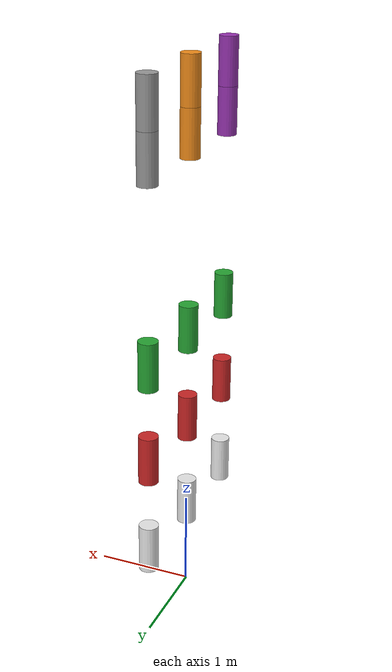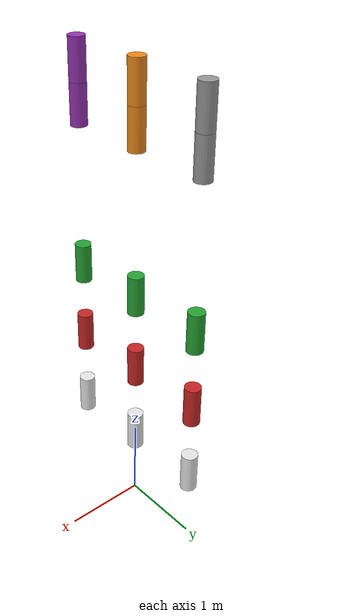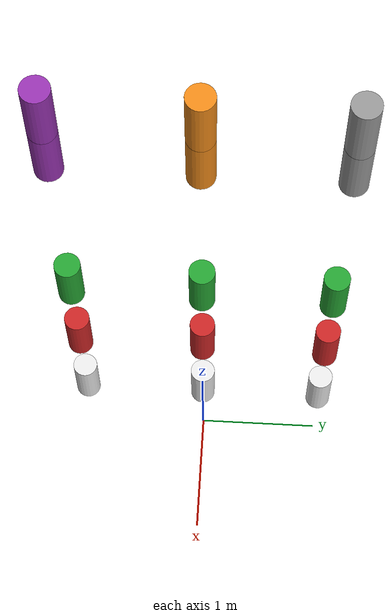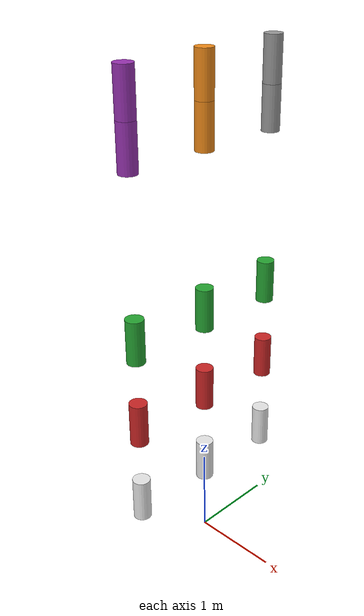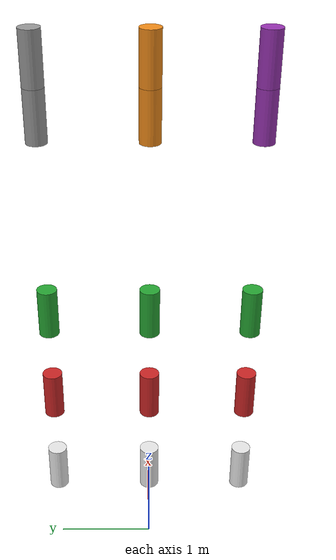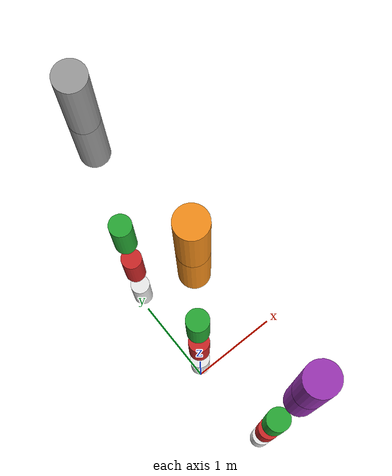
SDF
<?xml version="1.0"?>
<sdf version="1.6">
  <world name='default'>
    <light name='sun' type='directional'>
      <cast_shadows>1</cast_shadows>
      <pose frame=''>0 0 10 0 -0 0</pose>
      <diffuse>0.8 0.8 0.8 1</diffuse>
      <specular>0.1 0.1 0.1 1</specular>
      <attenuation>
        <range>1000</range>
        <constant>0.9</constant>
        <linear>0.01</linear>
        <quadratic>0.001</quadratic>
      </attenuation>
      <direction>-0.5 0.5 -1</direction>
    </light>
    <gravity>0 0 0</gravity>
    <magnetic_field>6e-06 2.3e-05 -4.2e-05</magnetic_field>
    <atmosphere type='adiabatic'/>
    <physics name='default_physics' default='0' type='ode'>
      <max_step_size>0.001</max_step_size>
      <real_time_factor>1</real_time_factor>
      <real_time_update_rate>1000</real_time_update_rate>
    </physics>
    <scene>
      <ambient>0.4 0.4 0.4 1</ambient>
      <background>0.7 0.7 0.7 1</background>
      <shadows>1</shadows>
    </scene>
    <model name='link_velocity_demo'>
      <plugin name='set_link_velocity_plugin' filename='libSetLinkVelocityPlugin.so'/>
      <link name='white_link_0'>
        <pose frame=''>0 1 1 0 0 0</pose>
        <visual name='white_visual_0'>
          <geometry>
            <cylinder>
              <radius>0.1</radius>
              <length>0.5</length>
            </cylinder>
          </geometry>
          <material>
            <lighting>1</lighting>
            <script>
              <uri>file://media/materials/scripts/gazebo.material</uri>
              <name>Gazebo/White</name>
            </script>
          </material>
        </visual>
      </link>
      <link name='white_link_1'>
        <pose frame=''>0 0 1 0 0 0</pose>
        <visual name='white_visual_1'>
          <geometry>
            <cylinder>
              <radius>0.1</radius>
              <length>0.5</length>
            </cylinder>
          </geometry>
          <material>
            <lighting>1</lighting>
            <script>
              <uri>file://media/materials/scripts/gazebo.material</uri>
              <name>Gazebo/White</name>
            </script>
          </material>
        </visual>
      </link>
      <link name='white_link_2'>
        <pose frame=''>0 -1 1 0 0 0</pose>
        <visual name='white_visual_2'>
          <geometry>
            <cylinder>
              <radius>0.1</radius>
              <length>0.5</length>
            </cylinder>
          </geometry>
          <material>
            <lighting>1</lighting>
            <script>
              <uri>file://media/materials/scripts/gazebo.material</uri>
              <name>Gazebo/White</name>
            </script>
          </material>
        </visual>
      </link>
      <link name='red_link_0'>
        <pose frame=''>0 1 2 0 0 0</pose>
        <visual name='red_visual_1'>
          <geometry>
            <cylinder>
              <radius>0.1</radius>
              <length>0.5</length>
            </cylinder>
          </geometry>
          <material>
            <lighting>1</lighting>
            <script>
              <uri>file://media/materials/scripts/gazebo.material</uri>
              <name>Gazebo/Red</name>
            </script>
          </material>
        </visual>
      </link>
      <link name='red_link_1'>
        <pose frame=''>0 0 2 0 0 0</pose>
        <visual name='red_visual_1'>
          <geometry>
            <cylinder>
              <radius>0.1</radius>
              <length>0.5</length>
            </cylinder>
          </geometry>
          <material>
            <lighting>1</lighting>
            <script>
              <uri>file://media/materials/scripts/gazebo.material</uri>
              <name>Gazebo/Red</name>
            </script>
          </material>
        </visual>
      </link>
      <link name='red_link_2'>
        <pose frame=''>0 -1 2 0 0 0</pose>
        <visual name='red_visual_2'>
          <geometry>
            <cylinder>
              <radius>0.1</radius>
              <length>0.5</length>
            </cylinder>
          </geometry>
          <material>
            <lighting>1</lighting>
            <script>
              <uri>file://media/materials/scripts/gazebo.material</uri>
              <name>Gazebo/Red</name>
            </script>
          </material>
        </visual>
      </link>
      <link name='green_link_0'>
        <pose frame=''>0 1 3 0 0 0</pose>
        <visual name='green_visual_0'>
          <geometry>
            <cylinder>
              <radius>0.1</radius>
              <length>0.5</length>
            </cylinder>
          </geometry>
          <material>
            <lighting>1</lighting>
            <script>
              <uri>file://media/materials/scripts/gazebo.material</uri>
              <name>Gazebo/Green</name>
            </script>
          </material>
        </visual>
      </link>
      <link name='green_link_1'>
        <pose frame=''>0 0 3 0 0 0</pose>
        <visual name='green_visual_1'>
          <geometry>
            <cylinder>
              <radius>0.1</radius>
              <length>0.5</length>
            </cylinder>
          </geometry>
          <material>
            <lighting>1</lighting>
            <script>
              <uri>file://media/materials/scripts/gazebo.material</uri>
              <name>Gazebo/Green</name>
            </script>
          </material>
        </visual>
      </link>
      <link name='green_link_2'>
        <pose frame=''>0 -1 3 0 0 0</pose>
        <visual name='green_visual_2'>
          <geometry>
            <cylinder>
              <radius>0.1</radius>
              <length>0.5</length>
            </cylinder>
          </geometry>
          <material>
            <lighting>1</lighting>
            <script>
              <uri>file://media/materials/scripts/gazebo.material</uri>
              <name>Gazebo/Green</name>
            </script>
          </material>
        </visual>
      </link>
    </model>
    <model name='joint_velocity_demo'>
      <plugin name='set_joint_velocity_plugin' filename='libSetJointVelocityPlugin.so'/>
      <link name='purple_link_0'>
        <pose frame=''>0 -1 5 0 0 0</pose>
        <visual name='purple_visual_0'>
          <geometry>
            <cylinder>
              <radius>0.1</radius>
              <length>0.5</length>
            </cylinder>
          </geometry>
          <material>
            <lighting>1</lighting>
            <script>
              <uri>file://media/materials/scripts/gazebo.material</uri>
              <name>Gazebo/Purple</name>
            </script>
          </material>
        </visual>
      </link>
      <link name='purple_link_1'>
        <pose frame=''>0 -1 5.5 0 0 0</pose>
        <visual name='purple_visual_1'>
          <geometry>
            <cylinder>
              <radius>0.1</radius>
              <length>0.5</length>
            </cylinder>
          </geometry>
          <material>
            <lighting>1</lighting>
            <script>
              <uri>file://media/materials/scripts/gazebo.material</uri>
              <name>Gazebo/Purple</name>
            </script>
          </material>
        </visual>
      </link>
      <joint name='purple_joint' type='revolute'>
        <parent>purple_link_0</parent>
        <child>purple_link_1</child>
        <pose frame=''>0 0 -0.25 0 -0 0</pose>
        <axis>
          <xyz>1 0 0</xyz>
          <limit>
            <lower>-1.5</lower>
            <upper>1.5</upper>
            <effort>-1</effort>
            <velocity>-1</velocity>
          </limit>
        </axis>
      </joint>
      <link name='orange_link_0'>
        <pose frame=''>0 0 5 0 0 0</pose>
        <visual name='orange_visual_0'>
          <geometry>
            <cylinder>
              <radius>0.1</radius>
              <length>0.5</length>
            </cylinder>
          </geometry>
          <material>
            <lighting>1</lighting>
            <script>
              <uri>file://media/materials/scripts/gazebo.material</uri>
              <name>Gazebo/Orange</name>
            </script>
          </material>
        </visual>
      </link>
      <link name='orange_link_1'>
        <pose frame=''>0 0 5.5 0 0 0</pose>
        <visual name='orange_visual_1'>
          <geometry>
            <cylinder>
              <radius>0.1</radius>
              <length>0.5</length>
            </cylinder>
          </geometry>
          <material>
            <lighting>1</lighting>
            <script>
              <uri>file://media/materials/scripts/gazebo.material</uri>
              <name>Gazebo/Orange</name>
            </script>
          </material>
        </visual>
      </link>
      <joint name='orange_joint' type='revolute'>
        <parent>orange_link_0</parent>
        <child>orange_link_1</child>
        <pose frame=''>0 0 -0.25 0 -0 0</pose>
        <axis>
          <xyz>1 0 0</xyz>
          <limit>
            <lower>-1.5</lower>
            <upper>1.5</upper>
            <effort>-1</effort>
            <velocity>-1</velocity>
          </limit>
        </axis>
      </joint>
      <link name='gray_link_0'>
        <pose frame=''>0 1 5 0 0 0</pose>
        <visual name='gray_visual_0'>
          <geometry>
            <cylinder>
              <radius>0.1</radius>
              <length>0.5</length>
            </cylinder>
          </geometry>
          <material>
            <lighting>1</lighting>
            <script>
              <uri>file://media/materials/scripts/gazebo.material</uri>
              <name>Gazebo/Grey</name>
            </script>
          </material>
        </visual>
      </link>
      <link name='gray_link_1'>
        <pose frame=''>0 1 5.5 0 0 0</pose>
        <visual name='gray_visual_1'>
          <geometry>
            <cylinder>
              <radius>0.1</radius>
              <length>0.5</length>
            </cylinder>
          </geometry>
          <material>
            <lighting>1</lighting>
            <script>
              <uri>file://media/materials/scripts/gazebo.material</uri>
              <name>Gazebo/Grey</name>
            </script>
          </material>
        </visual>
      </link>
      <joint name='gray_joint' type='revolute'>
        <parent>gray_link_0</parent>
        <child>gray_link_1</child>
        <pose frame=''>0 0 -0.25 0 -0 0</pose>
        <axis>
          <xyz>1 0 0</xyz>
          <limit>
            <lower>-1.5</lower>
            <upper>1.5</upper>
            <effort>-1</effort>
            <velocity>-1</velocity>
          </limit>
        </axis>
      </joint>
    </model>
    <gui fullscreen='0'>
      <camera name='user_camera'>
        <pose frame=''>-10 0 3 0 0 0</pose>
        <view_controller>orbit</view_controller>
        <projection_type>perspective</projection_type>
      </camera>
    </gui>
  </world>

</sdf>
